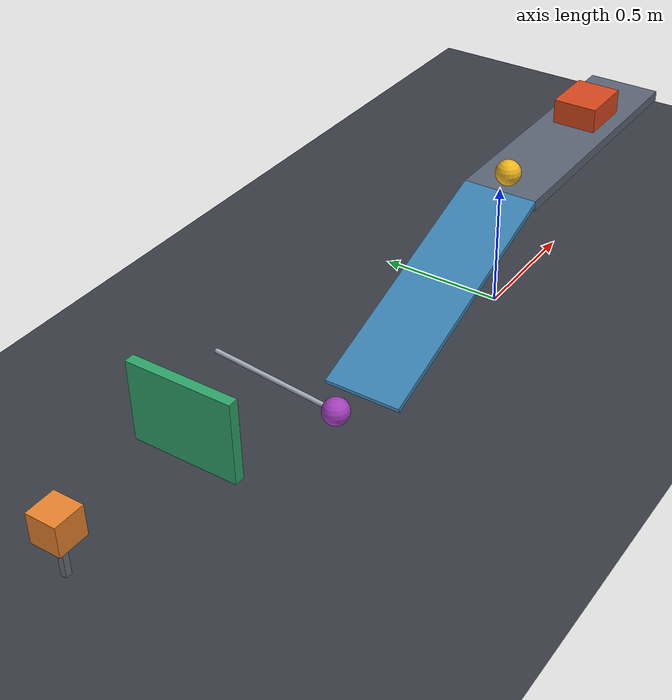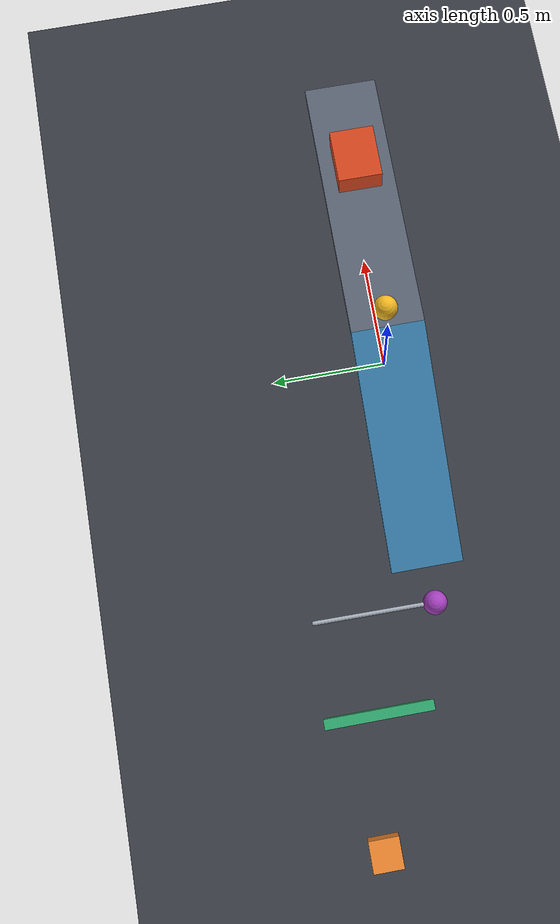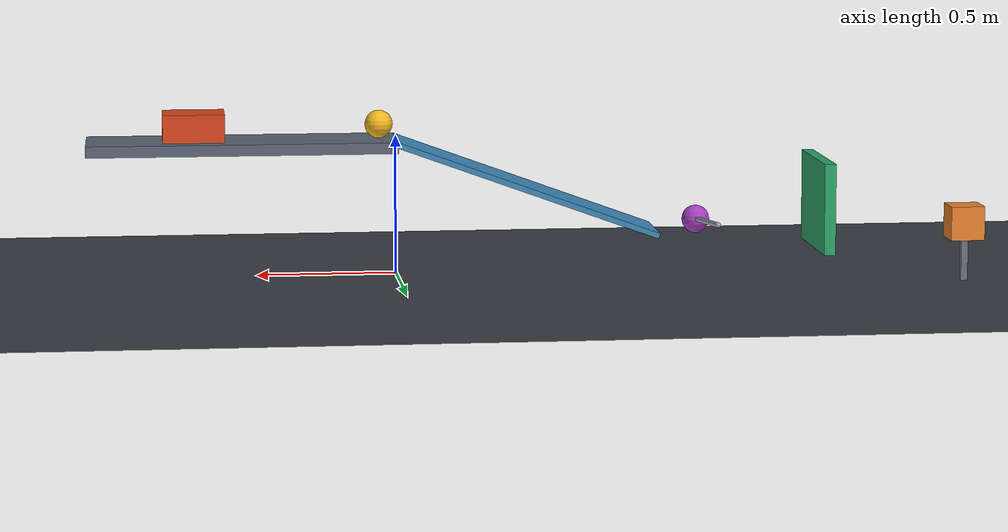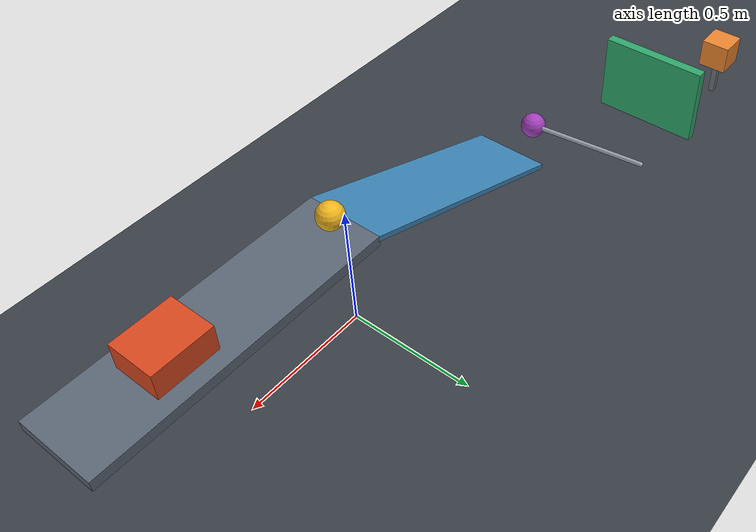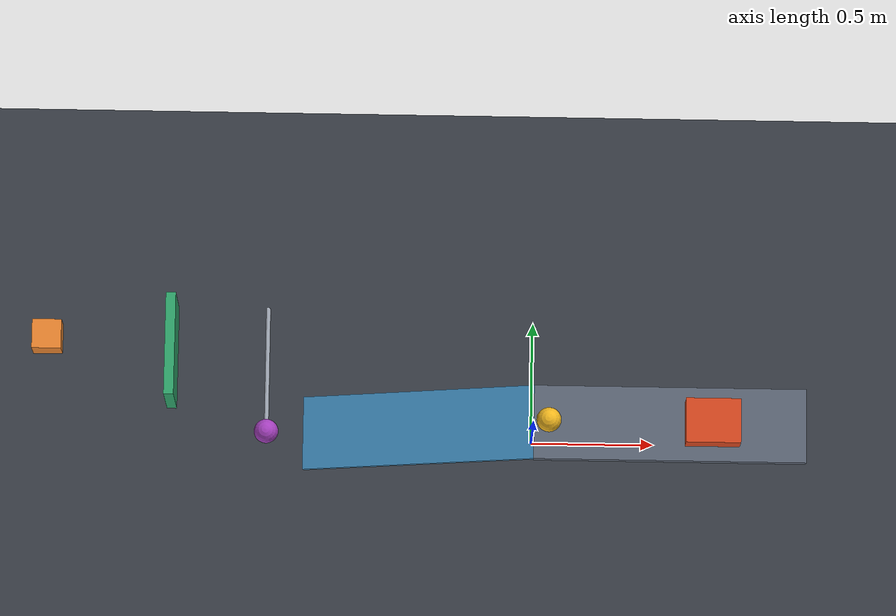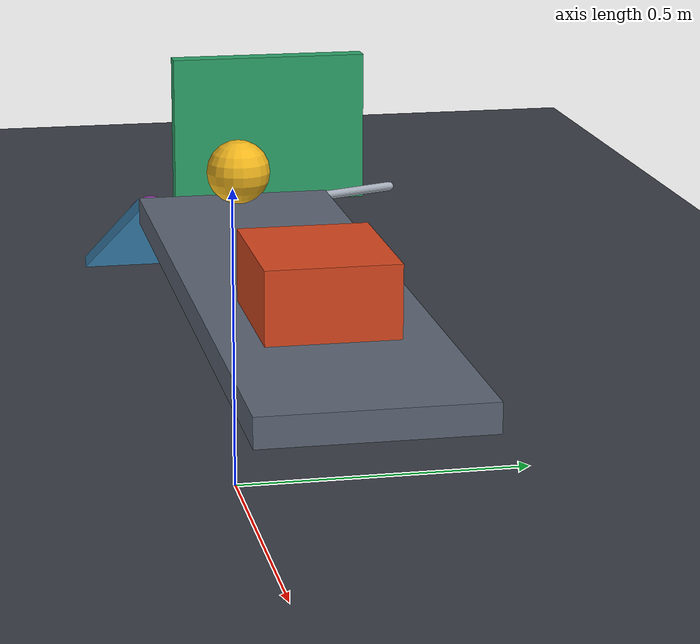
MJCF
<mujoco model="passive_cart_ball_pendulum_door_revised">
  <compiler angle="degree" inertiafromgeom="true"/>
  <option timestep="0.002" gravity="0 0 -9.81" integrator="implicitfast" solver="Newton" cone="elliptic" iterations="100" tolerance="1e-10"/>
  <size njmax="2000" nconmax="400"/>

  <visual>
    <headlight ambient="0.35 0.35 0.35" diffuse="0.65 0.65 0.65" specular="0.2 0.2 0.2"/>
    <map znear="0.01" zfar="30"/>
  </visual>

  <worldbody>
    <light name="scene_light" pos="-0.5 -2 4" dir="0.1 0.4 -1"/>
    <camera name="overview" pos="-0.6 -4.5 2.8" xyaxes="1 0 0 0 0.5 0.8660254"/>

    <geom name="floor" type="plane" size="5 5 0.1" pos="0 0 0" friction="0.68 0.005 0.002" condim="6" solref="0.008 0.69010673" solimp="0.95 0.99 0.001 0.5 2" rgba="0.22 0.24 0.27 1"/>

    <!--
      The guide constraint supports cart1 without deck friction.
      Its leading face initially has 0.50 m clearance from ball1.
    -->
    <body name="cart1" pos="0.72 0 0.5420201433">
      <joint name="cart1_slide" type="slide" axis="-1 0 0" damping="0.20" limited="true" range="0 0.64" solreflimit="0.004 1" solimplimit="0.999 0.9999 0.0001 0.5 2"/>
      <geom name="cart1_chassis" type="box" size="0.11 0.09 0.05" mass="0.50" friction="0.68 0.005 0.002" condim="6" solref="0.008 0.69010673" solimp="0.95 0.99 0.001 0.5 2" rgba="0.85 0.28 0.12 1"/>
    </body>

    <body name="ball1" pos="0.06 0 0.5420201433">
      <freejoint name="ball1_free"/>
      <geom name="ball1_sphere" type="sphere" size="0.05" mass="0.20" contype="1" conaffinity="5" friction="0.68 0.005 0.002" condim="6" solref="0.008 0.69010673" solimp="0.95 0.99 0.001 0.5 2" rgba="0.95 0.72 0.12 1"/>
    </body>

    <body name="launch_deck" pos="0.55 0 0.4720201433">
      <geom name="launch_deck_surface" type="box" size="0.55 0.15 0.02" contype="4" conaffinity="0" friction="0.68 0.005 0.002" condim="6" solref="0.008 0.69010673" solimp="0.95 0.99 0.001 0.5 2" rgba="0.36 0.40 0.46 1"/>
    </body>

    <!--
      Ramp top is 1.00 m long and 0.30 m wide at 20 degrees.
      High endpoint: (0, 0, 0.4920201433).
      Low endpoint: (-0.9396926208, 0, 0.15).
    -->
    <body name="ramp1" pos="-0.4698463104 0 0.3210100717" euler="0 -20 0">
      <geom name="ramp1_surface" type="box" pos="0 0 -0.01" size="0.50 0.15 0.01" friction="0.68 0.005 0.002" condim="6" solref="0.008 0.69010673" solimp="0.95 0.99 0.001 0.5 2" rgba="0.24 0.53 0.72 1"/>
    </body>

    <body name="pendulum1" pos="-1.0896926208 0.4974937186 0.23">
      <joint name="pendulum1_hinge" type="hinge" axis="0 0.1 -0.9949874371" damping="0.04" limited="true" range="-5 100" solreflimit="0.004 1" solimplimit="0.999 0.9999 0.0001 0.5 2"/>
      <geom name="pendulum1_rod" type="capsule" fromto="0 0 0 0 -0.4974937186 -0.05" size="0.009" mass="0.025" friction="0.68 0.005 0.002" condim="6" solref="0.008 0.69010673" solimp="0.95 0.99 0.001 0.5 2" rgba="0.65 0.68 0.73 1"/>
      <geom name="pendulum1_bob" type="sphere" pos="0 -0.4974937186 -0.05" size="0.05" mass="0.325" friction="0.68 0.005 0.002" condim="6" solref="0.008 0.69010673" solimp="0.95 0.99 0.001 0.5 2" rgba="0.65 0.25 0.75 1"/>
    </body>

    <body name="door1" pos="-1.4810864256 0.52 0.12">
      <joint name="door1_hinge" type="hinge" axis="0 -0.3420201433 -0.9396926208" damping="0.04" limited="true" range="0 70" solreflimit="0.004 1" solimplimit="0.999 0.9999 0.0001 0.5 2"/>
      <geom name="door1_panel" type="box" pos="0 -0.21 0.16" size="0.02 0.21 0.16" mass="0.45" friction="0.68 0.005 0.002" condim="6" solref="0.008 0.69010673" solimp="0.95 0.99 0.001 0.5 2" rgba="0.18 0.65 0.42 1"/>
    </body>

    <body name="block1_pedestal" pos="-1.995 0.375 0.075">
      <geom name="block1_pedestal_column" type="box" size="0.012 0.012 0.075" friction="0.68 0.005 0.002" condim="6" solref="0.008 0.69010673" solimp="0.95 0.99 0.001 0.5 2" rgba="0.42 0.44 0.48 1"/>
    </body>

    <body name="block1" pos="-1.995 0.375 0.21">
      <freejoint name="block1_free"/>
      <geom name="block1_cube" type="box" size="0.06 0.06 0.06" mass="0.35" friction="0.68 0.005 0.002" condim="6" solref="0.008 0.69010673" solimp="0.95 0.99 0.001 0.5 2" rgba="0.92 0.52 0.18 1"/>
    </body>
  </worldbody>

  <tendon>
    <fixed name="cart1_axial_spring" stiffness="18" damping="0" springlength="0.20 2.00">
      <joint joint="cart1_slide" coef="1"/>
    </fixed>
  </tendon>

  <keyframe>
    <key name="start" time="0" qpos="0 0.06 0 0.5420201433 1 0 0 0 0 0 -1.995 0.375 0.21 1 0 0 0" qvel="0 0 0 0 0 0 0 0 0 0 0 0 0 0 0"/>
  </keyframe>
</mujoco>
